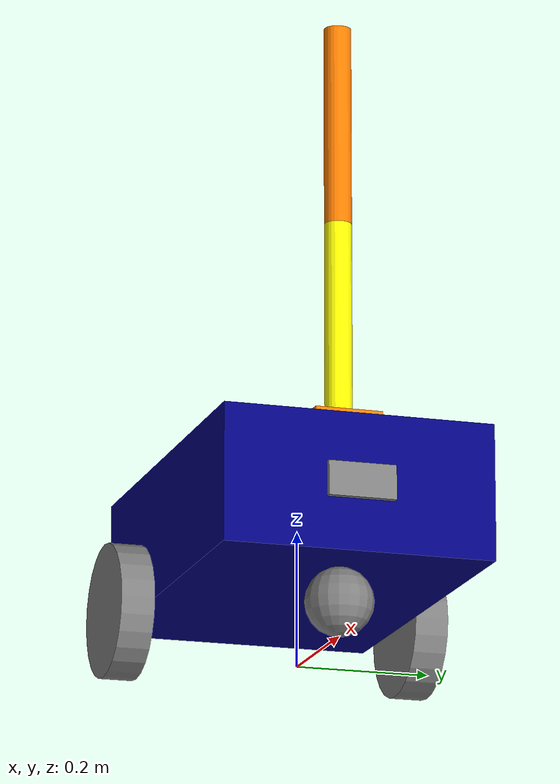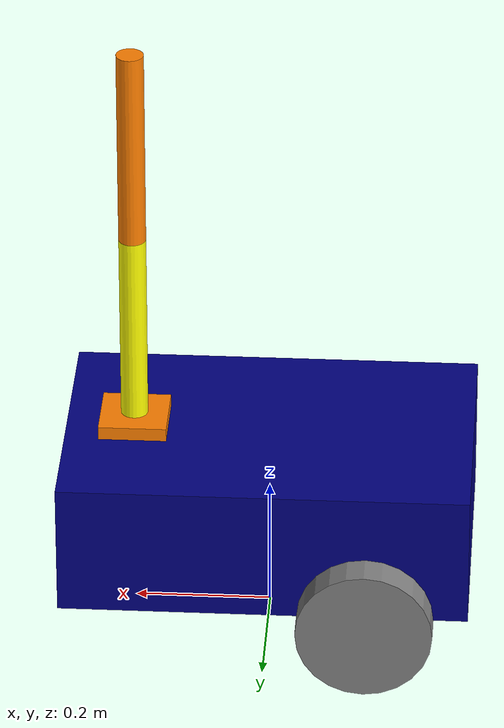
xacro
<?xml version="1.0"?>   <!-- Indicates that this file is an xml file -->

<!-- The placement of tags is very important, e.g. material tag has to be -->
<!-- defined in the robot tag, and then referred to in the visual tag -->

<robot name="my_robot" xmlns:xacro="http://www.ros.org/wiki/xacro">

    <!-- We include common_properties first, we then wont have to include
         it in the other files, e.g. mobile_base.xacro, just including
         it in this gathering file is okay  -->
    <xacro:include filename="common_properties.xacro" />
    <xacro:include filename="mobile_base.xacro" />
    <xacro:include filename="mobile_base_gazebo.xacro" />
    <xacro:include filename="camera.xacro" />
    <xacro:include filename="arm.xacro" />
    <xacro:include filename="arm_gazebo.xacro" />

    <!-- Adding the connecting joint on this file -->
    <joint name="mobile_base_arm_joint" type="fixed">
        <parent link="base_link" />
        <child link="arm_base_link" />
        <origin xyz="${base_length/3.0} 0 ${base_height}" rpy="0 0 0" />
    </joint>

</robot>

<!--
    By convention, this file is .urdf.xacro to indicate that it is the file that concerns the launch file
    the other .xacro files are included in this .urdf.xacro file.
-->

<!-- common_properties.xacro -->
<!-- The name="" is absent in the robot tag, meaning that this file is not
     meant to be launched directly, but included in another .urdf.xacro -->
<robot xmlns:xacro="http://www.ros.org/wiki/xacro">

    <material name="blue">
        <color rgba="0 0 0.5 1" />
    </material>

    <material name="grey">
        <color rgba="0.5 0.5 0.5 1" />
    </material>

    <material name="pink">
        <color rgba="1 0 0.5 1" />
    </material>

    <material name="orange">
        <color rgba="1 0.5 0 1" />
    </material>

    <material name="yellow">
        <color rgba="1 1 0 1" />
    </material>

    <xacro:macro name="box_inertia" params="m x y z o_xyz o_rpy">
        <inertial>
            <mass value="${m}" />   <!-- mass in kg -->
            <origin xyz="${o_xyz}" rpy="${o_rpy}" />
            <inertia ixx="${(m/12) * (y*y + z*z)}"  ixy="0"                         ixz="0"
                                                    iyy="${(m/12) * (x*x + z*z)}"   iyz="0"
                                                                                    izz="${(m/12) * (x*x + y*y)}" />
        </inertial>
    </xacro:macro>

    <xacro:macro name="cylinder_inertia" params="m r l o_xyz o_rpy">
        <inertial>
            <mass value="${m}" />
            <origin xyz="${o_xyz}" rpy="${o_rpy}" />
            <inertia ixx="${(m/12) * (3*r*r + l*l)}"  ixy="0"                            ixz="0"
                                                      iyy="${(m/12) * (3*r*r + l*l)}"    iyz="0"
                                                                                         izz="${(1/2)*m*r*r}" />
        </inertial>
    </xacro:macro>

    <xacro:macro name="sphere_inertia" params="m r o_xyz o_rpy">
        <inertial>
            <mass value="${m}" />
            <origin xyz="${o_xyz}" rpy="${o_rpy}" />
            <inertia ixx="${(2/5) * m * r*r}"  ixy="0"                   ixz="0"
                                               iyy="${(2/5) * m * r*r}"  iyz="0"
                                                                         izz="${(2/5) * m * r*r}" />
        </inertial>
    </xacro:macro>

</robot>

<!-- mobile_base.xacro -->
<!-- The name="" is absent in the robot tag, meaning that this file is not
     meant to be launched directly, but included in another .urdf.xacro -->
<robot xmlns:xacro="http://www.ros.org/wiki/xacro">

    <xacro:property name="base_length" value="0.6" />   <!-- we can define xacro variables/properties and access them with ${} -->
    <xacro:property name="base_width" value="0.4" />
    <xacro:property name="base_height" value="0.2" />
    <xacro:property name="wheel_radius" value="0.1" />
    <xacro:property name="wheel_length" value="0.05" />

    <xacro:property name="box_mass" value="5.0" />
    <xacro:property name="wheel_mass" value="1.0" />
    <xacro:property name="caster_wheel_mass" value="0.5" />

  <!-- ################ LINKS ################ -->

    <link name="base_footprint" />   <!-- the convention is to omit "_link" in base_footprint name -->

    <link name="base_link">   <!-- the name "base_link" is good practice/mandatory -->

        <visual>
            <geometry>
                <box size="${base_length} ${base_width} ${base_height}" />   <!-- length(x), width(y), heigh(z) in meters -->
            </geometry>
            <origin xyz="0 0 ${base_height / 2.0}" rpy="0 0 0" />   <!-- rpy stands for roll, pitch, yaw -->
            <material name="blue" />
        </visual>

        <collision>
            <geometry>
                <box size="${base_length} ${base_width} ${base_height}" />
            </geometry>
            <origin xyz="0 0 ${base_height / 2.0}" rpy="0 0 0" />
        </collision>

        <xacro:box_inertia m="${box_mass}" x="${base_length}" y="${base_width}" z="${base_height}"
                           o_xyz="0 0 ${base_height / 2.0}" o_rpy="0 0 0" />

    </link>

    <xacro:macro name="wheel_link" params="prefix">
        <link name="${prefix}_wheel_link">
            <visual>
            <geometry>
                <cylinder radius="${wheel_radius}" length="${wheel_length}" />
            </geometry>
            <origin xyz="0 0 0" rpy="${pi / 2.0} 0 0" />
            <material name="grey" />
        </visual>

        <collision>
            <geometry>
                <sphere radius="${wheel_radius}" />
            </geometry>
            <origin xyz="0 0 0" rpy="0 0 0" />
        </collision>

        <xacro:cylinder_inertia m="${wheel_mass}" r="${wheel_radius}" l="${wheel_length}"
                                o_xyz="0 0 0" o_rpy="${pi / 2.0} 0 0" />
        </link>
    </xacro:macro>

    <xacro:wheel_link prefix="right" />
    <xacro:wheel_link prefix="left" />

    <link name="caster_wheel_link">
        <visual>
            <geometry>
                <sphere radius="${wheel_radius / 2.0}" />
            </geometry>
            <origin xyz="0 0 0" rpy="0 0 0" />
            <material name="grey" />
        </visual>

        <collision>
            <geometry>
                <sphere radius="${wheel_radius / 2.0}" />
            </geometry>
            <origin xyz="0 0 0" rpy="0 0 0" />
        </collision>

        <xacro:sphere_inertia m="${caster_wheel_mass}" r="${wheel_radius / 2.0}"
                              o_xyz="0 0 0" o_rpy="0 0 0" />
    </link>

  <!-- ################ JOINTS ################ -->

    <!-- Since the parent is base_footprint, then the base_link is
         positioned wrt base_footprint -->
    <joint name="base_joint" type="fixed">
        <parent link="base_footprint" />
        <child link="base_link" />
        <origin xyz="0 0 ${wheel_radius}" rpy="0 0 0" />
    </joint>

    <joint name="base_right_wheel_joint" type="continuous">
        <parent link="base_link" />
        <child link="right_wheel_link" />
        <origin xyz="${-base_length / 4.0} ${-(base_width / 2.0 + wheel_length / 2.0)} 0" rpy="0 0 0" />
        <axis xyz="0 1 0" />
    </joint>

    <joint name="base_left_wheel_joint" type="continuous">
        <parent link="base_link" />
        <child link="left_wheel_link" />
        <origin xyz="${-base_length / 4.0} ${base_width / 2.0 + wheel_length / 2.0} 0" rpy="0 0 0" />
        <axis xyz="0 1 0" />
    </joint>

    <joint name="base_caster_wheel_joint" type="fixed">
        <parent link="base_link" />
        <child link="caster_wheel_link" />
        <origin xyz="${base_length / 3.0} 0 ${-wheel_radius / 2.0}" rpy="0 0 0" />
    </joint>

</robot>

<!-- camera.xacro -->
<robot xmlns:xacro="http://www.ros.org/wiki/xacro">

    <xacro:property name="camera_length" value="0.01" />
    <xacro:property name="camera_width" value="0.1" />
    <xacro:property name="camera_height" value="0.05" />

    <link name="camera_link">
        <visual>
            <geometry>
                <box size="${camera_length} ${camera_width} ${camera_height}" />
            </geometry>
            <material name="grey" />
        </visual>
        <collision>
            <geometry>
                <box size="${camera_length} ${camera_width} ${camera_height}" />
            </geometry>
        </collision>
        <xacro:box_inertia m="0.1" x="${camera_length}" y="${camera_width}" z="${camera_height}"
                           o_xyz="0 0 0" o_rpy="0 0 0" />
    </link>

    <joint name="base_camera_joint" type="fixed">
        <parent link="base_link" />
        <child link="camera_link" />
        <origin xyz="${(base_length + camera_length)/2.0} 0 ${base_height/2.0}" rpy="0 0 0" />
    </joint>

    <!-- ###### TO MAKE CAMERA COMPATIBLE WITH OPENCV ###### -->

    <link name="camera_link_optical" />

    <joint name="camera_optical_joint" type="fixed">
        <origin xyz="0 0 0" rpy="${-pi/2} 0 ${-pi/2}"/>
        <parent link="camera_link"/>
        <child link="camera_link_optical"/>
    </joint>

    <!-- The topic names here are gazebo topics, and they must be bridged to ROS2 -->
    <gazebo reference="camera_link">
        <sensor name="camera" type="camera">
            <camera>
                <horizontal_fov>1.3962634</horizontal_fov>
                <image>
                    <width>640</width>
                    <height>480</height>
                    <format>R8G8B8</format>
                </image>
                <clip>
                    <near>0.1</near>
                    <far>15</far>
                </clip>
                <noise>
                    <type>gaussian</type>
                    <mean>0.0</mean>
                    <stddev>0.007</stddev>
                </noise>
                <!-- This name inside here must match with the name of the camera link in the code -->
                <!-- So previously camera_link, but if we want TO MAKE CAMERA COMPATIBLE WITH OPENCV
                     then it is the new link created which is ######### camera_link_optical ######### -->
                <optical_frame_id>camera_link_optical</optical_frame_id>
                <camera_info_topic>camera/camera_info</camera_info_topic>
            </camera>
            <always_on>1</always_on>
            <update_rate>20</update_rate>
            <visualize>true</visualize>
            <topic>camera/image_raw</topic>
        </sensor>
    </gazebo>

</robot>

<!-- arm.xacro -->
<robot xmlns:xacro="http://www.ros.org/wiki/xacro">

    <xacro:property name="arm_base_length" value="0.1" />
    <xacro:property name="arm_base_width" value="0.1" />
    <xacro:property name="arm_base_height" value="0.02" />
    <xacro:property name="forearm_radius" value="0.02" />
    <xacro:property name="forearm_length" value="0.3" />
    <xacro:property name="hand_radius" value="0.02" />
    <xacro:property name="hand_length" value="0.3" />

    <xacro:property name="arm_base_mass" value="0.5" />   <!-- increase the mass to 5.0 if you try out the arm alone -->
    <xacro:property name="forearm_mass" value="0.3" />
    <xacro:property name="hand_mass" value="0.3" />

  <!-- ################ LINKS ################ -->

    <link name="arm_base_link">
        <visual>
            <geometry>
                <box size="${arm_base_length} ${arm_base_width} ${arm_base_height}" />
            </geometry>
            <material name="orange" />
            <origin xyz="0 0 ${arm_base_height/2.0}" rpy="0 0 0" />
        </visual>
        <collision>
            <geometry>
                <box size="${arm_base_length} ${arm_base_width} ${arm_base_height}" />
            </geometry>
        </collision>
        <xacro:box_inertia m="${arm_base_mass}" x="${arm_base_length}" y="${arm_base_width}" z="${arm_base_height}"
                           o_xyz="0 0 0" o_rpy="0 0 0" />
    </link>

    <link name="forearm_link">
        <visual>
            <geometry>
                <cylinder radius="${forearm_radius}" length="${forearm_length}" />
            </geometry>
            <material name="yellow" />
            <origin xyz="0 0 ${forearm_length/2.0}" rpy="0 0 0" />
        </visual>
        <collision>
            <geometry>
                <cylinder radius="${forearm_radius}" length="${forearm_length}" />   <!-- one can also use a box to make it even simpler, but a cylinder is simple enough -->
            </geometry>
            <origin xyz="0 0 ${forearm_length/2.0}" rpy="0 0 0" />
        </collision>
        <xacro:cylinder_inertia m="${forearm_mass}" r="${forearm_radius}" l="${forearm_length}"
                                o_xyz="0 0 ${forearm_length/2.0}" o_rpy="0 0 0" />
    </link>

    <link name="hand_link">
        <visual>
            <geometry>
                <cylinder radius="${hand_radius}" length="${hand_length}" />
            </geometry>
            <material name="orange" />
            <origin xyz="0 0 ${hand_length/2.0}" rpy="0 0 0" />
        </visual>
        <collision>
            <geometry>
                <cylinder radius="${hand_radius}" length="${hand_length}" />
            </geometry>
            <origin xyz="0 0 ${hand_length/2.0}" rpy="0 0 0" />
        </collision>
        <xacro:cylinder_inertia m="${hand_mass}" r="${hand_radius}" l="${hand_length}"
                                o_xyz="0 0 ${hand_length/2.0}" o_rpy="0 0 0" />
    </link>

  <!-- ################ JOINTS ################ -->

    <joint name="arm_base_forearm_joint" type="revolute">
        <parent link="arm_base_link" />
        <child link="forearm_link" />

        <origin xyz="0 0 ${arm_base_height/2.0}" rpy="0 0 0" />   <!-- important detail here that i had forgotten, we need to lift this joint (elbow) because the forearm isn't in the arm_base, it is right where the arm_base ends -->
        <axis xyz="0 1 0" />

        <limit
            lower="0"
            upper="${pi/2.0}"
            effort="100"
            velocity="100" />

        <dynamics friction="0.3" damping="0.3" />
    </joint>

    <joint name="forearm_hand_joint" type="revolute">
        <parent link="forearm_link" />
        <child link="hand_link" />

        <origin xyz="0 0 ${forearm_length}" rpy="0 0 0" />
        <axis xyz="0 1 0" />

        <limit
            lower="0"
            upper="${pi/2.0}"
            effort="100"
            velocity="100" />

        <dynamics friction="0.3" damping="0.3" />
    </joint>

</robot>
